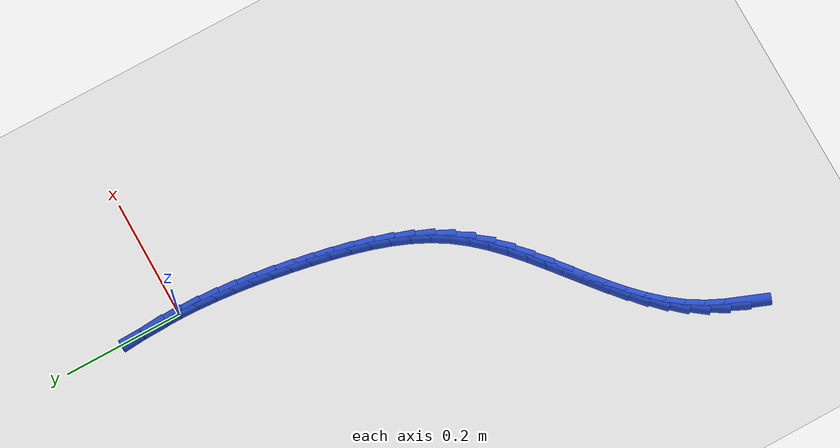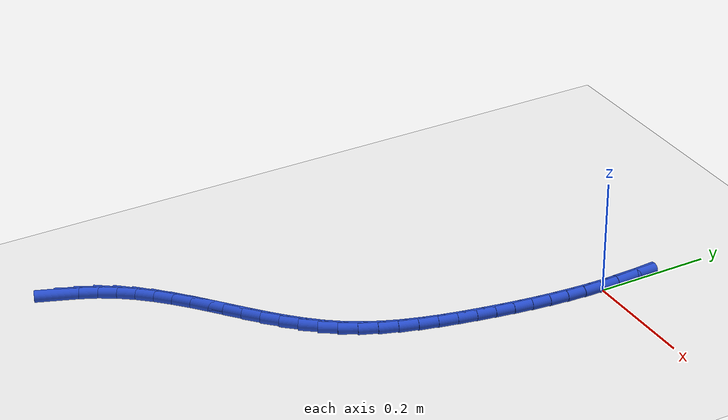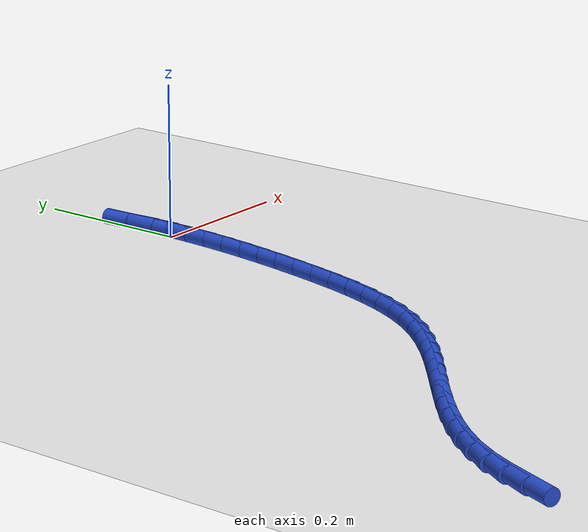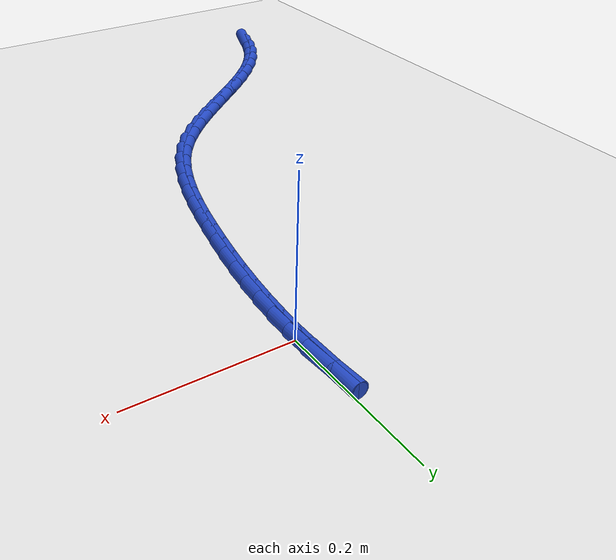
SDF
<sdf version="1.6">
 <world name="default">
  <model name="ground_plane">
   <static>1</static>
   <link name="link">
    <collision name="collision">
     <geometry><plane><normal>0 0 1</normal><size>100 100</size></plane></geometry>
     <surface><friction><ode><mu>100</mu><mu2>50</mu2></ode></friction></surface>
    </collision>
    <visual name="visual">
     <cast_shadows>0</cast_shadows>
     <geometry><plane><normal>0 0 1</normal><size>100 100</size></plane></geometry>
     <material>
      <script><uri>file://media/materials/scripts/gazebo.material</uri><name>Gazebo/WhiteGlow</name></script>
     </material>
    </visual>
   </link>
  </model>
  <model name="line">
   <link name="link_0">
    <pose>0.0 -4.163336342344337e-17 0.01 0 1.57 -1.563006256594229</pose>
    <collision name="collision">
     <geometry><cylinder><radius>0.01</radius><length>0.08</length></cylinder></geometry>
    </collision>
    <visual name="visual">
     <material>
      <script><name>Gazebo/Blue</name><uri>file://media/materials/scripts/gazebo.material</uri></script>
     </material>
     <geometry><cylinder><radius>0.01</radius><length>0.08</length></cylinder></geometry>
    </visual>
   </link>
   <link name="link_1">
    <pose>-0.000248928956558965 0.0319540022993984 0.01 0 1.57 -1.5278305219193011</pose>
    <collision name="collision">
     <geometry><cylinder><radius>0.01</radius><length>0.08</length></cylinder></geometry>
    </collision>
    <visual name="visual">
     <material>
      <script><name>Gazebo/Blue</name><uri>file://media/materials/scripts/gazebo.material</uri></script>
     </material>
     <geometry><cylinder><radius>0.01</radius><length>0.08</length></cylinder></geometry>
    </visual>
   </link>
   <link name="link_2">
    <pose>-0.001624358744487196 0.0639464975463272 0.01 0 1.57 -1.492891923296698</pose>
    <collision name="collision">
     <geometry><cylinder><radius>0.01</radius><length>0.08</length></cylinder></geometry>
    </collision>
    <visual name="visual">
     <material>
      <script><name>Gazebo/Blue</name><uri>file://media/materials/scripts/gazebo.material</uri></script>
     </material>
     <geometry><cylinder><radius>0.01</radius><length>0.08</length></cylinder></geometry>
    </visual>
   </link>
   <link name="link_251">
    <pose>-0.41569358687318325 -0.7929922750206336 0.01 0 1.57 1.2030665942220105</pose>
    <collision name="collision">
     <geometry><cylinder><radius>0.01</radius><length>0.08</length></cylinder></geometry>
    </collision>
    <visual name="visual">
     <material>
      <script><name>Gazebo/Blue</name><uri>file://media/materials/scripts/gazebo.material</uri></script>
     </material>
     <geometry><cylinder><radius>0.01</radius><length>0.08</length></cylinder></geometry>
    </visual>
   </link>
   <link name="link_252">
    <pose>-0.4040428986578597 -0.7627506715702446 0.01 0 1.57 1.130485429612663</pose>
    <collision name="collision">
     <geometry><cylinder><radius>0.01</radius><length>0.08</length></cylinder></geometry>
    </collision>
    <visual name="visual">
     <material>
      <script><name>Gazebo/Blue</name><uri>file://media/materials/scripts/gazebo.material</uri></script>
     </material>
     <geometry><cylinder><radius>0.01</radius><length>0.08</length></cylinder></geometry>
    </visual>
   </link>
   <link name="link_253">
    <pose>-0.39041355440835457 -0.7338234852713034 0.01 0 1.57 1.0332167822494602</pose>
    <collision name="collision">
     <geometry><cylinder><radius>0.01</radius><length>0.08</length></cylinder></geometry>
    </collision>
    <visual name="visual">
     <material>
      <script><name>Gazebo/Blue</name><uri>file://media/materials/scripts/gazebo.material</uri></script>
     </material>
     <geometry><cylinder><radius>0.01</radius><length>0.08</length></cylinder></geometry>
    </visual>
   </link>
   <link name="link_254">
    <pose>-0.3742079518150203 -0.7066394548809964 0.01 0 1.57 0.9327814684228075</pose>
    <collision name="collision">
     <geometry><cylinder><radius>0.01</radius><length>0.08</length></cylinder></geometry>
    </collision>
    <visual name="visual">
     <material>
      <script><name>Gazebo/Blue</name><uri>file://media/materials/scripts/gazebo.material</uri></script>
     </material>
     <geometry><cylinder><radius>0.01</radius><length>0.08</length></cylinder></geometry>
    </visual>
   </link>
   <link name="link_255">
    <pose>-0.35537722672013383 -0.681242731400703 0.01 0 1.57 0.8491036850688561</pose>
    <collision name="collision">
     <geometry><cylinder><radius>0.01</radius><length>0.08</length></cylinder></geometry>
    </collision>
    <visual name="visual">
     <material>
      <script><name>Gazebo/Blue</name><uri>file://media/materials/scripts/gazebo.material</uri></script>
     </material>
     <geometry><cylinder><radius>0.01</radius><length>0.08</length></cylinder></geometry>
    </visual>
   </link>
   <link name="link_256">
    <pose>-0.3343461027099192 -0.6573455478724178 0.01 0 1.57 0.7833108134752218</pose>
    <collision name="collision">
     <geometry><cylinder><radius>0.01</radius><length>0.08</length></cylinder></geometry>
    </collision>
    <visual name="visual">
     <material>
      <script><name>Gazebo/Blue</name><uri>file://media/materials/scripts/gazebo.material</uri></script>
     </material>
     <geometry><cylinder><radius>0.01</radius><length>0.08</length></cylinder></geometry>
    </visual>
   </link>
   <link name="link_257">
    <pose>-0.3115548485874619 -0.6346492423419623 0.01 0 1.57 0.734966816833972</pose>
    <collision name="collision">
     <geometry><cylinder><radius>0.01</radius><length>0.08</length></cylinder></geometry>
    </collision>
    <visual name="visual">
     <material>
      <script><name>Gazebo/Blue</name><uri>file://media/materials/scripts/gazebo.material</uri></script>
     </material>
     <geometry><cylinder><radius>0.01</radius><length>0.08</length></cylinder></geometry>
    </visual>
   </link>
   <link name="link_258">
    <pose>-0.2874437331558468 -0.6128551528551566 0.01 0 1.57 0.7032949216460296</pose>
    <collision name="collision">
     <geometry><cylinder><radius>0.01</radius><length>0.08</length></cylinder></geometry>
    </collision>
    <visual name="visual">
     <material>
      <script><name>Gazebo/Blue</name><uri>file://media/materials/scripts/gazebo.material</uri></script>
     </material>
     <geometry><cylinder><radius>0.01</radius><length>0.08</length></cylinder></geometry>
    </visual>
   </link>
   <link name="link_259">
    <pose>-0.262453025218159 -0.5916646174578217 0.01 0 1.57 0.6875935006146794</pose>
    <collision name="collision">
     <geometry><cylinder><radius>0.01</radius><length>0.08</length></cylinder></geometry>
    </collision>
    <visual name="visual">
     <material>
      <script><name>Gazebo/Blue</name><uri>file://media/materials/scripts/gazebo.material</uri></script>
     </material>
     <geometry><cylinder><radius>0.01</radius><length>0.08</length></cylinder></geometry>
    </visual>
   </link>
   <link name="link_260">
    <pose>-0.23702299357748358 -0.5707789741957786 0.01 0 1.57 0.6874654048900012</pose>
    <collision name="collision">
     <geometry><cylinder><radius>0.01</radius><length>0.08</length></cylinder></geometry>
    </collision>
    <visual name="visual">
     <material>
      <script><name>Gazebo/Blue</name><uri>file://media/materials/scripts/gazebo.material</uri></script>
     </material>
     <geometry><cylinder><radius>0.01</radius><length>0.08</length></cylinder></geometry>
    </visual>
   </link>
   <link name="link_261">
    <pose>-0.21159390703690475 -0.5498995611148472 0.01 0 1.57 0.7029156414582881</pose>
    <collision name="collision">
     <geometry><cylinder><radius>0.01</radius><length>0.08</length></cylinder></geometry>
    </collision>
    <visual name="visual">
     <material>
      <script><name>Gazebo/Blue</name><uri>file://media/materials/scripts/gazebo.material</uri></script>
     </material>
     <geometry><cylinder><radius>0.01</radius><length>0.08</length></cylinder></geometry>
    </visual>
   </link>
   <link name="link_262">
    <pose>-0.18660603439950918 -0.5287277162608498 0.01 0 1.57 0.734352820345151</pose>
    <collision name="collision">
     <geometry><cylinder><radius>0.01</radius><length>0.08</length></cylinder></geometry>
    </collision>
    <visual name="visual">
     <material>
      <script><name>Gazebo/Blue</name><uri>file://media/materials/scripts/gazebo.material</uri></script>
     </material>
     <geometry><cylinder><radius>0.01</radius><length>0.08</length></cylinder></geometry>
    </visual>
   </link>
   <link name="link_263">
    <pose>-0.1624996444683812 -0.5069647776796065 0.01 0 1.57 0.7824943004186633</pose>
    <collision name="collision">
     <geometry><cylinder><radius>0.01</radius><length>0.08</length></cylinder></geometry>
    </collision>
    <visual name="visual">
     <material>
      <script><name>Gazebo/Blue</name><uri>file://media/materials/scripts/gazebo.material</uri></script>
     </material>
     <geometry><cylinder><radius>0.01</radius><length>0.08</length></cylinder></geometry>
    </visual>
   </link>
   <link name="link_264">
    <pose>-0.13971500604660572 -0.4843120834169378 0.01 0 1.57 0.8481391470107972</pose>
    <collision name="collision">
     <geometry><cylinder><radius>0.01</radius><length>0.08</length></cylinder></geometry>
    </collision>
    <visual name="visual">
     <material>
      <script><name>Gazebo/Blue</name><uri>file://media/materials/scripts/gazebo.material</uri></script>
     </material>
     <geometry><cylinder><radius>0.01</radius><length>0.08</length></cylinder></geometry>
    </visual>
   </link>
   <link name="link_265">
    <pose>-0.11869238793726797 -0.4604709715186649 0.01 0 1.57 0.9317525743005789</pose>
    <collision name="collision">
     <geometry><cylinder><radius>0.01</radius><length>0.08</length></cylinder></geometry>
    </collision>
    <visual name="visual">
     <material>
      <script><name>Gazebo/Blue</name><uri>file://media/materials/scripts/gazebo.material</uri></script>
     </material>
     <geometry><cylinder><radius>0.01</radius><length>0.08</length></cylinder></geometry>
    </visual>
   </link>
   <link name="link_266">
    <pose>-0.09987205894345293 -0.43514278003060847 0.01 0 1.57 1.028592176145554</pose>
    <collision name="collision">
     <geometry><cylinder><radius>0.01</radius><length>0.08</length></cylinder></geometry>
    </collision>
    <visual name="visual">
     <material>
      <script><name>Gazebo/Blue</name><uri>file://media/materials/scripts/gazebo.material</uri></script>
     </material>
     <geometry><cylinder><radius>0.01</radius><length>0.08</length></cylinder></geometry>
    </visual>
   </link>
   <link name="link_267">
    <pose>-0.08358758596977887 -0.40811145638486407 0.01 0 1.57 1.117741273206842</pose>
    <collision name="collision">
     <geometry><cylinder><radius>0.01</radius><length>0.08</length></cylinder></geometry>
    </collision>
    <visual name="visual">
     <material>
      <script><name>Gazebo/Blue</name><uri>file://media/materials/scripts/gazebo.material</uri></script>
     </material>
     <geometry><cylinder><radius>0.01</radius><length>0.08</length></cylinder></geometry>
    </visual>
   </link>
   <link name="link_268">
    <pose>-0.06967948519073765 -0.37954267147677845 0.01 0 1.57 1.1931434792468507</pose>
    <collision name="collision">
     <geometry><cylinder><radius>0.01</radius><length>0.08</length></cylinder></geometry>
    </collision>
    <visual name="visual">
     <material>
      <script><name>Gazebo/Blue</name><uri>file://media/materials/scripts/gazebo.material</uri></script>
     </material>
     <geometry><cylinder><radius>0.01</radius><length>0.08</length></cylinder></geometry>
    </visual>
   </link>
   <link name="link_269">
    <pose>-0.0578459569633662 -0.3497122781432207 0.01 0 1.57 1.2552288590990226</pose>
    <collision name="collision">
     <geometry><cylinder><radius>0.01</radius><length>0.08</length></cylinder></geometry>
    </collision>
    <visual name="visual">
     <material>
      <script><name>Gazebo/Blue</name><uri>file://media/materials/scripts/gazebo.material</uri></script>
     </material>
     <geometry><cylinder><radius>0.01</radius><length>0.08</length></cylinder></geometry>
    </visual>
   </link>
   <link name="link_270">
    <pose>-0.04778518794199706 -0.3188961398297913 0.01 0 1.57 1.30478586507081</pose>
    <collision name="collision">
     <geometry><cylinder><radius>0.01</radius><length>0.08</length></cylinder></geometry>
    </collision>
    <visual name="visual">
     <material>
      <script><name>Gazebo/Blue</name><uri>file://media/materials/scripts/gazebo.material</uri></script>
     </material>
     <geometry><cylinder><radius>0.01</radius><length>0.08</length></cylinder></geometry>
    </visual>
   </link>
   <link name="link_271">
    <pose>-0.039195364780963665 -0.28737011998209466 0.01 0 1.57 1.3426522491805815</pose>
    <collision name="collision">
     <geometry><cylinder><radius>0.01</radius><length>0.08</length></cylinder></geometry>
    </collision>
    <visual name="visual">
     <material>
      <script><name>Gazebo/Blue</name><uri>file://media/materials/scripts/gazebo.material</uri></script>
     </material>
     <geometry><cylinder><radius>0.01</radius><length>0.08</length></cylinder></geometry>
    </visual>
   </link>
   <link name="link_272">
    <pose>-0.03177467413459851 -0.2554100820457317 0.01 0 1.57 1.36951992017082</pose>
    <collision name="collision">
     <geometry><cylinder><radius>0.01</radius><length>0.08</length></cylinder></geometry>
    </collision>
    <visual name="visual">
     <material>
      <script><name>Gazebo/Blue</name><uri>file://media/materials/scripts/gazebo.material</uri></script>
     </material>
     <geometry><cylinder><radius>0.01</radius><length>0.08</length></cylinder></geometry>
    </visual>
   </link>
   <link name="link_273">
    <pose>-0.025221302657234417 -0.22329188946630435 0.01 0 1.57 1.3878772820929681</pose>
    <collision name="collision">
     <geometry><cylinder><radius>0.01</radius><length>0.08</length></cylinder></geometry>
    </collision>
    <visual name="visual">
     <material>
      <script><name>Gazebo/Blue</name><uri>file://media/materials/scripts/gazebo.material</uri></script>
     </material>
     <geometry><cylinder><radius>0.01</radius><length>0.08</length></cylinder></geometry>
    </visual>
   </link>
   <link name="link_274">
    <pose>-0.019292916455211338 -0.1912442794711233 0.01 0 1.57 1.4067169832184134</pose>
    <collision name="collision">
     <geometry><cylinder><radius>0.01</radius><length>0.08</length></cylinder></geometry>
    </collision>
    <visual name="visual">
     <material>
      <script><name>Gazebo/Blue</name><uri>file://media/materials/scripts/gazebo.material</uri></script>
     </material>
     <geometry><cylinder><radius>0.01</radius><length>0.08</length></cylinder></geometry>
    </visual>
   </link>
   <link name="link_275">
    <pose>-0.014002878497597333 -0.15929339787546107 0.01 0 1.57 1.4284383306893067</pose>
    <collision name="collision">
     <geometry><cylinder><radius>0.01</radius><length>0.08</length></cylinder></geometry>
    </collision>
    <visual name="visual">
     <material>
      <script><name>Gazebo/Blue</name><uri>file://media/materials/scripts/gazebo.material</uri></script>
     </material>
     <geometry><cylinder><radius>0.01</radius><length>0.08</length></cylinder></geometry>
    </visual>
   </link>
   <link name="link_276">
    <pose>-0.009433247924494653 -0.1274109617693296 0.01 0 1.57 1.4530367244178555</pose>
    <collision name="collision">
     <geometry><cylinder><radius>0.01</radius><length>0.08</length></cylinder></geometry>
    </collision>
    <visual name="visual">
     <material>
      <script><name>Gazebo/Blue</name><uri>file://media/materials/scripts/gazebo.material</uri></script>
     </material>
     <geometry><cylinder><radius>0.01</radius><length>0.08</length></cylinder></geometry>
    </visual>
   </link>
   <link name="link_277">
    <pose>-0.00566608476204344 -0.09556868754072341 0.01 0 1.57 1.4804803408199565</pose>
    <collision name="collision">
     <geometry><cylinder><radius>0.01</radius><length>0.08</length></cylinder></geometry>
    </collision>
    <visual name="visual">
     <material>
      <script><name>Gazebo/Blue</name><uri>file://media/materials/scripts/gazebo.material</uri></script>
     </material>
     <geometry><cylinder><radius>0.01</radius><length>0.08</length></cylinder></geometry>
    </visual>
   </link>
   <link name="link_278">
    <pose>-0.0027834490363838364 -0.06373829157763694 0.01 0 1.57 1.5107042200196785</pose>
    <collision name="collision">
     <geometry><cylinder><radius>0.01</radius><length>0.08</length></cylinder></geometry>
    </collision>
    <visual name="visual">
     <material>
      <script><name>Gazebo/Blue</name><uri>file://media/materials/scripts/gazebo.material</uri></script>
     </material>
     <geometry><cylinder><radius>0.01</radius><length>0.08</length></cylinder></geometry>
    </visual>
   </link>
   <link name="link_279">
    <pose>-0.0008674007736559418 -0.031891490268063705 0.01 0 1.57 1.5436045282238156</pose>
    <collision name="collision">
     <geometry><cylinder><radius>0.01</radius><length>0.08</length></cylinder></geometry>
    </collision>
    <visual name="visual">
     <material>
      <script><name>Gazebo/Blue</name><uri>file://media/materials/scripts/gazebo.material</uri></script>
     </material>
     <geometry><cylinder><radius>0.01</radius><length>0.08</length></cylinder></geometry>
    </visual>
   </link>
   <link name="link_280">
    <pose>-1.8648277366750676e-17 -2.1510571102112408e-16 0.01 0 1.57 -1.5625590294103322</pose>
    <collision name="collision">
     <geometry><cylinder><radius>0.01</radius><length>0.08</length></cylinder></geometry>
    </collision>
    <visual name="visual">
     <material>
      <script><name>Gazebo/Blue</name><uri>file://media/materials/scripts/gazebo.material</uri></script>
     </material>
     <geometry><cylinder><radius>0.01</radius><length>0.08</length></cylinder></geometry>
    </visual>
   </link>
   <link name="link_281">
    <pose>-0.0002633067415561325 0.031964462838560095 0.01 0 1.57 -1.5247960173480342</pose>
    <collision name="collision">
     <geometry><cylinder><radius>0.01</radius><length>0.08</length></cylinder></geometry>
    </collision>
    <visual name="visual">
     <material>
      <script><name>Gazebo/Blue</name><uri>file://media/materials/scripts/gazebo.material</uri></script>
     </material>
     <geometry><cylinder><radius>0.01</radius><length>0.08</length></cylinder></geometry>
    </visual>
   </link>
   <link name="link_282">
    <pose>-0.0017393810244644287 0.0640301818596227 0.01 0 1.57 -1.543637988158275</pose>
    <collision name="collision">
     <geometry><cylinder><radius>0.01</radius><length>0.08</length></cylinder></geometry>
    </collision>
    <visual name="visual">
     <material>
      <script><name>Gazebo/Blue</name><uri>file://media/materials/scripts/gazebo.material</uri></script>
     </material>
     <geometry><cylinder><radius>0.01</radius><length>0.08</length></cylinder></geometry>
    </visual>
   </link>
  </model>
 </world>
</sdf>
